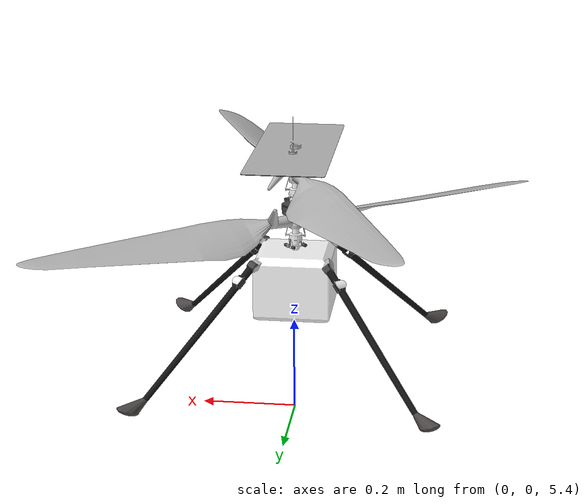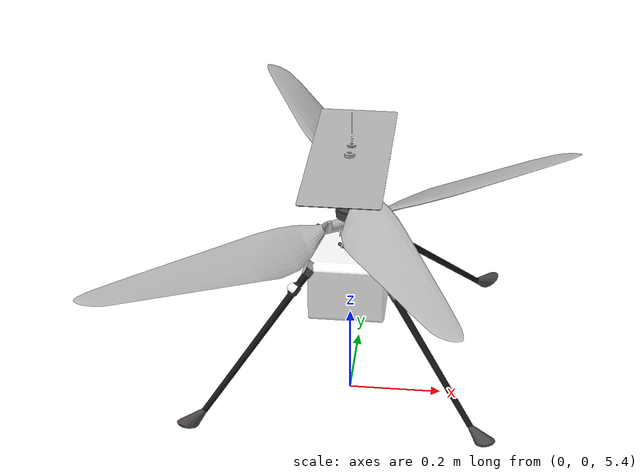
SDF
<sdf version="1.6">
 <world name="ingenuity_world">
  <gravity>0 0 -3.71</gravity>
  <wind><linear_velocity>0 0 0</linear_velocity></wind>
  <plugin filename="ignition-gazebo-physics-system" name="gz::sim::systems::Physics"/>
  <plugin filename="ignition-gazebo-sensors-system" name="gz::sim::systems::Sensors">
   <render_engine>ogre2</render_engine>
  </plugin>
  <plugin filename="ignition-gazebo-user-commands-system" name="gz::sim::systems::UserCommands"/>
  <plugin filename="ignition-gazebo-scene-broadcaster-system" name="gz::sim::systems::SceneBroadcaster"/>
  <plugin filename="ignition-gazebo-imu-system" name="ignition::gazebo::systems::Imu"/>
  <plugin filename="ignition-gazebo-altimeter-system" name="gz::sim::systems::Altimeter"/>
  <plugin filename="ignition-gazebo-particle-emitter2-system" name="ignition::gazebo::systems::ParticleEmitter2"/>
  <light type="directional" name="sun">
   <pose>0 0 10 0 0 0</pose>
   <diffuse>1 1 1 1</diffuse>
   <specular>0.5 0.5 0.5 1</specular>
   <attenuation>
    <range>1000</range>
    <constant>0.9</constant>
    <linear>0.01</linear>
    <quadratic>0.001</quadratic>
   </attenuation>
   <direction>-0.5 0.1 -0.9</direction>
  </light>
  <plugin filename="ignition-gazebo-apply-link-wrench-system" name="gz::sim::systems::ApplyLinkWrench"/>
  <model name="dust_storm">
   <pose>25 0 1.5 0 -1.5707 0</pose>
   <static>true</static>
   <link name="dust_link">
    <particle_emitter name="emitter" type="box">
     <emitting>false</emitting>
     <size>70 70 0</size>
     <particle_size>0.005 0.005 0.005</particle_size>
     <lifetime>25</lifetime>
     <min_velocity>0.6</min_velocity>
     <max_velocity>1.5</max_velocity>
     <scale_rate>2.5</scale_rate>
     <rate>10</rate>
     <particle_scatter_ratio>1.5</particle_scatter_ratio>
     <material>
      <diffuse>0.6 0.4 0.3</diffuse>
      <specular>0.2 0.2 0.2</specular>
      <pbr><metal><albedo_map>../meshes/fog.png</albedo_map></metal></pbr>
     </material>
     <color_range_image>../meshes/fogcolors.png</color_range_image>
    </particle_emitter>
   </link>
  </model>
  <model name="ingenuity_model">
   <enable_wind>true</enable_wind>
   <pose>0 0 5 0 0 0</pose>
   <link name="body">
    <pose>0.0 0 0.5 0 0 0</pose>
    <inertial>
     <inertia><ixx>1.8</ixx><ixy>0.0</ixy><ixz>0.0</ixz><iyy>1.8</iyy><iyz>0.0</iyz><izz>1.8</izz></inertia>
     <mass>10.0</mass>
    </inertial>
    <collision name="collision">
     <geometry><mesh><scale>1 1 1</scale><uri>../meshes/base_one_part.dae</uri></mesh></geometry>
     <surface><friction><ode><mu>0.1</mu><mu2>0.1</mu2></ode></friction></surface>
    </collision>
    <visual name="visual">
     <geometry><mesh><scale>1 1 1</scale><uri>../meshes/base_one_part.dae</uri></mesh></geometry>
    </visual>
    <sensor name="altimeter" type="altimeter">
     <always_on>1</always_on>
     <update_rate>30</update_rate>
     <visualize>true</visualize>
     <topic>altimeter</topic>
     <enable_metrics>true</enable_metrics>
     <altimeter>
      <vertical_position><noise type="gaussian"><mean>0.01</mean><stddev>0.01</stddev></noise></vertical_position>
      <vertical_velocity><noise type="gaussian"><mean>0.2</mean><stddev>0.1</stddev></noise></vertical_velocity>
     </altimeter>
    </sensor>
    <sensor name="camera" type="camera">
     <pose>0 0 0 0 1.5708 0</pose>
     <camera>
      <vertical_fov>1.047</vertical_fov>
      <image><width>320</width><height>240</height><format>R8G8B8</format></image>
      <clip><near>0.1</near><far>100</far></clip>
     </camera>
     <always_on>1</always_on>
     <update_rate>30</update_rate>
     <visualize>true</visualize>
     <topic>camera</topic>
    </sensor>
    <sensor name="imu" type="imu">
     <always_on>1</always_on>
     <update_rate>100</update_rate>
     <visualize>true</visualize>
     <topic>imu</topic>
     <enable_metrics>true</enable_metrics>
    </sensor>
   </link>
   <link name="rod_1">
    <pose>0 0 1.25 0 0 0</pose>
    <inertial>
     <inertia><ixx>0.012</ixx><ixy>0.0</ixy><ixz>0.0</ixz><iyy>0.012</iyy><iyz>0.0</iyz><izz>0.0012</izz></inertia>
     <mass>1.0</mass>
    </inertial>
    <collision name="collision"><geometry><box><size>0.02 0.02 0.5</size></box></geometry></collision>
    <visual name="visual">
     <pose>0 0 -0.75 0 0 0</pose>
     <geometry><mesh><scale>1 1 1</scale><uri>../meshes/rotor_blade_bottom.dae</uri></mesh></geometry>
    </visual>
   </link>
   <link name="blade_1">
    <pose>0 0 1.5 0.0 0 0</pose>
    <inertial>
     <pose>0.0 0.5 0 0.0 0.0 0.0</pose>
     <inertia>
      <ixx>0.0000465</ixx>
      <ixy>0.0</ixy>
      <ixz>0.0</ixz>
      <iyy>0.0000006</iyy>
      <iyz>0.0</iyz>
      <izz>0.0000470</izz>
     </inertia>
     <mass>0.01</mass>
    </inertial>
    <collision name="collision">
     <pose>0.0 0.5 0 0.0 0.0 0.0</pose>
     <geometry><box><size>0.2 1.0 0.01</size></box></geometry>
    </collision>
   </link>
   <link name="blade_2">
    <pose>0 0 1.5 0.0 0 3.141593</pose>
    <inertial>
     <pose>0.0 0.5 0 0.0 0.0 0.0</pose>
     <inertia>
      <ixx>0.0000465</ixx>
      <ixy>0.0</ixy>
      <ixz>0.0</ixz>
      <iyy>0.0000006</iyy>
      <iyz>0.0</iyz>
      <izz>0.0000470</izz>
     </inertia>
     <mass>0.01</mass>
    </inertial>
    <collision name="collision">
     <pose>0.0 0.5 0 0.0 0.0 0.0</pose>
     <geometry><box><size>0.2 1.0 0.01</size></box></geometry>
    </collision>
   </link>
   <joint name="rod_1_joint" type="revolute">
    <parent>body</parent>
    <child>rod_1</child>
    <axis>
     <limit><lower>-1e16</lower><upper>1e16</upper></limit>
     <xyz>0.0 0.0 -1.0</xyz>
     <dynamics><damping>0.0001</damping><friction>0.1</friction></dynamics>
    </axis>
    <physics><ode><cfm_damping>1</cfm_damping></ode></physics>
   </joint>
   <joint name="blade_1_joint" type="fixed">
    <parent>rod_1</parent>
    <child>blade_1</child>
    <pose>0.0 -0.5 0.0 0.0 0.0 0.0</pose>
   </joint>
   <joint name="blade_2_joint" type="fixed">
    <parent>rod_1</parent>
    <child>blade_2</child>
    <pose>0.0 0.5 0.0 0.0 0.0 0.0</pose>
   </joint>
   <link name="rod_2">
    <pose>0 0 1.75 0 0 0</pose>
    <inertial>
     <inertia><ixx>0.012</ixx><ixy>0.0</ixy><ixz>0.0</ixz><iyy>0.012</iyy><iyz>0.0</iyz><izz>0.0012</izz></inertia>
     <mass>1.0</mass>
    </inertial>
    <collision name="collision"><geometry><box><size>0.02 0.02 0.5</size></box></geometry></collision>
    <visual name="visual">
     <pose>0 0 -1.25 0 0 0</pose>
     <geometry><mesh><scale>1 1 1</scale><uri>../meshes/rotor_blade_top.dae</uri></mesh></geometry>
    </visual>
   </link>
   <link name="solar_panel">
    <pose>0 0 0.5 0 0 0</pose>
    <visual name="visual">
     <geometry><mesh><scale>1 1 1</scale><uri>../meshes/solar_panel_one_part.dae</uri></mesh></geometry>
    </visual>
   </link>
   <link name="blade_3">
    <pose>0 0 2.0 0.0 0 0</pose>
    <inertial>
     <pose>0.0 0.5 0 0.0 0.0 0.0</pose>
     <inertia>
      <ixx>0.0000465</ixx>
      <ixy>0.0</ixy>
      <ixz>0.0</ixz>
      <iyy>0.0000006</iyy>
      <iyz>0.0</iyz>
      <izz>0.0000470</izz>
     </inertia>
     <mass>0.01</mass>
    </inertial>
    <collision name="collision">
     <pose>0.0 0.5 0 0.0 0.0 0.0</pose>
     <geometry><box><size>0.2 1.0 0.01</size></box></geometry>
    </collision>
   </link>
   <link name="blade_4">
    <pose>0 0 2.0 0.0 0 3.141593</pose>
    <inertial>
     <pose>0.0 0.5 0 0.0 0.0 0.0</pose>
     <inertia>
      <ixx>0.0000465</ixx>
      <ixy>0.0</ixy>
      <ixz>0.0</ixz>
      <iyy>0.0000006</iyy>
      <iyz>0.0</iyz>
      <izz>0.0000470</izz>
     </inertia>
     <mass>0.01</mass>
    </inertial>
    <collision name="collision">
     <pose>0.0 0.5 0 0.0 0.0 0.0</pose>
     <geometry><box><size>0.2 1.0 0.01</size></box></geometry>
    </collision>
   </link>
   <joint name="rod_2_joint" type="revolute">
    <parent>body</parent>
    <child>rod_2</child>
    <axis>
     <limit><lower>-1e16</lower><upper>1e16</upper></limit>
     <xyz>0.0 0.0 1.0</xyz>
     <dynamics><damping>0.0001</damping><friction>0.1</friction></dynamics>
    </axis>
    <physics><ode><cfm_damping>1</cfm_damping></ode></physics>
   </joint>
   <joint name="blade_3_joint" type="fixed"><parent>rod_2</parent><child>blade_3</child></joint>
   <joint name="blade_4_joint" type="fixed"><parent>rod_2</parent><child>blade_4</child></joint>
   <joint name="solar_panel_joint" type="fixed"><parent>body</parent><child>solar_panel</child></joint>
   <plugin filename="helicopter_flight_simulation" name="gz::sim::systems::HelicopterFlightSimulation">
    <a0>0.1</a0>
    <cla>0.1</cla>
    <cda>0.001</cda>
    <cma>0.0</cma>
    <cp>0.0 0.5 0</cp>
    <area>0.2</area>
    <air_density>0.024082</air_density>
    <forward>1 0 0</forward>
    <upward>0 0 -1</upward>
    <link_name>blade_3</link_name>
   </plugin>
   <plugin filename="helicopter_flight_simulation" name="gz::sim::systems::HelicopterFlightSimulation">
    <a0>0.1</a0>
    <cla>0.1</cla>
    <cda>0.001</cda>
    <cma>0.0</cma>
    <cp>0.0 0.5 0</cp>
    <area>0.2</area>
    <air_density>0.024082</air_density>
    <forward>1 0 0</forward>
    <upward>0 0 -1</upward>
    <link_name>blade_4</link_name>
   </plugin>
   <plugin filename="ignition-gazebo-joint-state-publisher-system" name="gz::sim::systems::JointStatePublisher"/>
   <plugin filename="helicopter_flight_simulation" name="gz::sim::systems::HelicopterFlightSimulation">
    <a0>0.1</a0>
    <cla>0.1</cla>
    <cda>0.001</cda>
    <cma>0.0</cma>
    <cp>0.0 0.5 0</cp>
    <area>0.2</area>
    <air_density>0.024082</air_density>
    <forward>1 0 0</forward>
    <upward>0 0 1</upward>
    <link_name>blade_1</link_name>
   </plugin>
   <plugin filename="helicopter_flight_simulation" name="gz::sim::systems::HelicopterFlightSimulation">
    <a0>0.1</a0>
    <cla>0.1</cla>
    <cda>0.001</cda>
    <cma>0.0</cma>
    <cp>0.0 0.5 0</cp>
    <area>0.2</area>
    <air_density>0.024082</air_density>
    <forward>1 0 0</forward>
    <upward>0 0 1</upward>
    <link_name>blade_2</link_name>
   </plugin>
   <plugin filename="gz-sim-joint-controller-system" name="gz::sim::systems::JointController">
    <joint_name>rod_1_joint</joint_name>
    <use_force_commands>true</use_force_commands>
    <p_gain>1.0</p_gain>
    <i_gain>0.1</i_gain>
    <d_gain>0.0</d_gain>
    <initial_velocity>2000.0</initial_velocity>
   </plugin>
   <plugin filename="gz-sim-joint-controller-system" name="gz::sim::systems::JointController">
    <joint_name>rod_2_joint</joint_name>
    <use_force_commands>true</use_force_commands>
    <p_gain>1.0</p_gain>
    <i_gain>0.1</i_gain>
    <d_gain>0.0</d_gain>
    <initial_velocity>2000.0</initial_velocity>
   </plugin>
   <plugin filename="gz-sim-pose-publisher-system" name="gz::sim::systems::PosePublisher">
    <use_pose_vector_msg>true</use_pose_vector_msg>
    <publish_nested_model_pose>true</publish_nested_model_pose>
   </plugin>
   <plugin name="gz::sim::systems::HelicopterControl" filename="helicopter_flight_control">
    <kp_alt>0.027</kp_alt>
    <ki_alt>0.0005</ki_alt>
    <kd_alt>0.1</kd_alt>
    <desired_altitude>10.0</desired_altitude>
    <link_name>body</link_name>
   </plugin>
   <plugin filename="ignition-gazebo-linearbatteryplugin-system" name="gz::sim::systems::LinearBatteryPlugin">
    <battery_name>ingenuity_battery</battery_name>
    <voltage>4.2</voltage>
    <open_circuit_voltage_constant_coef>4.2</open_circuit_voltage_constant_coef>
    <open_circuit_voltage_linear_coef>-2.0</open_circuit_voltage_linear_coef>
    <initial_charge>2.5</initial_charge>
    <capacity>2.5</capacity>
    <resistance>0.07</resistance>
    <smooth_current_tau>2.0</smooth_current_tau>
    <enable_recharge>true</enable_recharge>
    <charging_time>3.0</charging_time>
    <power_load>2.1</power_load>
    <start_on_motion>true</start_on_motion>
    <fix_issue_225>true</fix_issue_225>
   </plugin>
  </model>
 </world>
</sdf>
